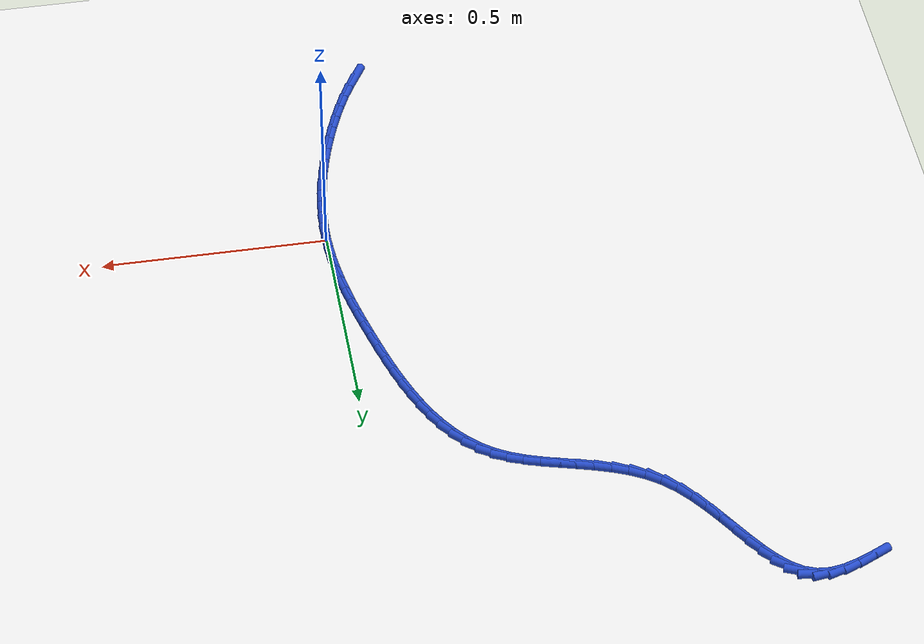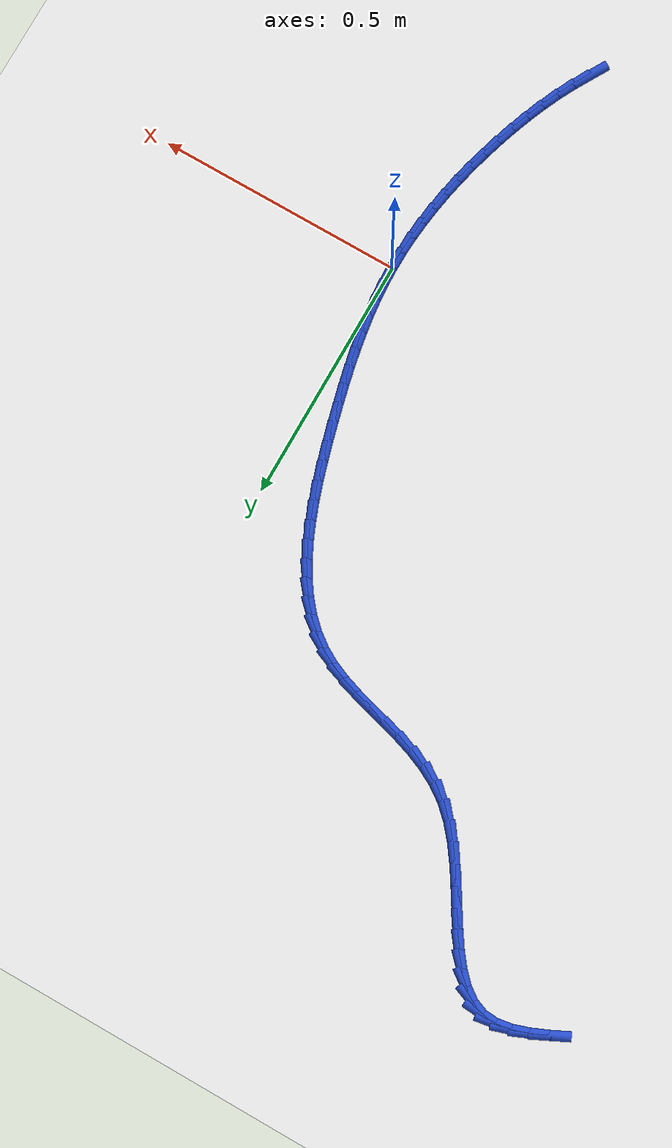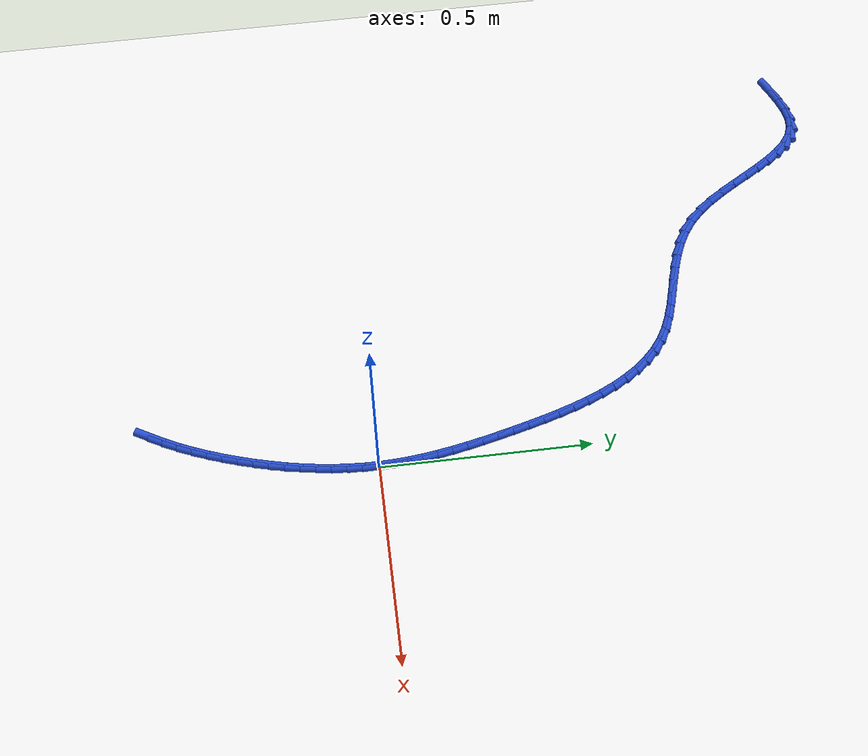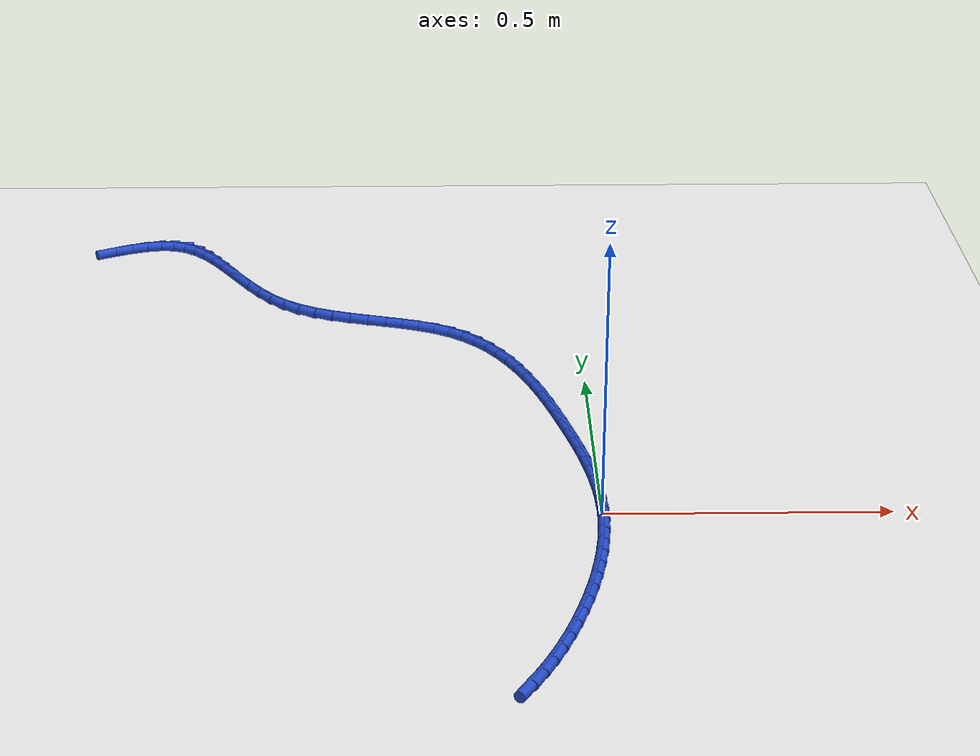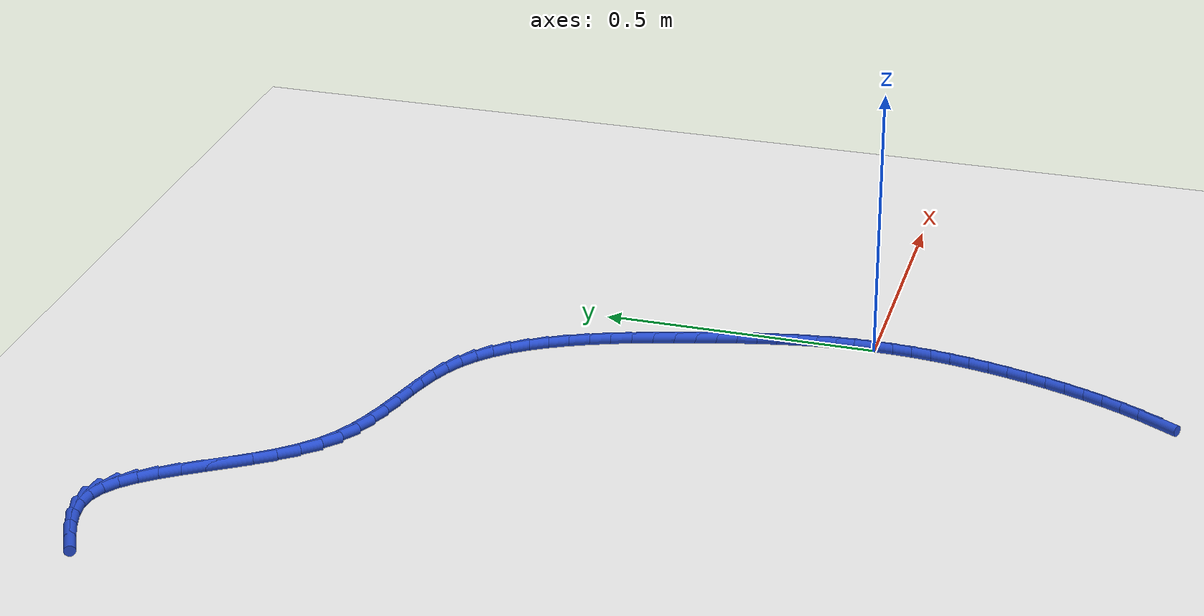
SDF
<sdf version="1.6">
 <world name="default">
  <model name="ground_plane">
   <static>1</static>
   <link name="link">
    <collision name="collision">
     <geometry><plane><normal>0 0 1</normal><size>100 100</size></plane></geometry>
     <surface><friction><ode><mu>100</mu><mu2>50</mu2></ode></friction></surface>
    </collision>
    <visual name="visual">
     <cast_shadows>0</cast_shadows>
     <geometry><plane><normal>0 0 1</normal><size>100 100</size></plane></geometry>
     <material>
      <script><uri>file://media/materials/scripts/gazebo.material</uri><name>Gazebo/WhiteGlow</name></script>
     </material>
    </visual>
   </link>
  </model>
  <model name="line">
   <link name="link_0">
    <pose>-1.214306433183765e-17 9.020562075079397e-17 0.01 0 1.57 -1.5380622606158996</pose>
    <collision name="collision">
     <geometry><cylinder><radius>0.01</radius><length>0.08</length></cylinder></geometry>
    </collision>
    <visual name="visual">
     <material>
      <script><name>Gazebo/Blue</name><uri>file://media/materials/scripts/gazebo.material</uri></script>
     </material>
     <geometry><cylinder><radius>0.01</radius><length>0.08</length></cylinder></geometry>
    </visual>
   </link>
   <link name="link_1">
    <pose>-0.0011506230612284894 0.03513807463007038 0.01 0 1.57 -1.496610817460994</pose>
    <collision name="collision">
     <geometry><cylinder><radius>0.01</radius><length>0.08</length></cylinder></geometry>
    </collision>
    <visual name="visual">
     <material>
      <script><name>Gazebo/Blue</name><uri>file://media/materials/scripts/gazebo.material</uri></script>
     </material>
     <geometry><cylinder><radius>0.01</radius><length>0.08</length></cylinder></geometry>
    </visual>
   </link>
   <link name="link_2">
    <pose>-0.0037538692371258536 0.07016470988369111 0.01 0 1.57 -1.4587520466387607</pose>
    <collision name="collision">
     <geometry><cylinder><radius>0.01</radius><length>0.08</length></cylinder></geometry>
    </collision>
    <visual name="visual">
     <material>
      <script><name>Gazebo/Blue</name><uri>file://media/materials/scripts/gazebo.material</uri></script>
     </material>
     <geometry><cylinder><radius>0.01</radius><length>0.08</length></cylinder></geometry>
    </visual>
   </link>
   <link name="link_3">
    <pose>-0.007691794820837743 0.10516366715586643 0.01 0 1.57 -1.4247978003058401</pose>
    <collision name="collision">
     <geometry><cylinder><radius>0.01</radius><length>0.08</length></cylinder></geometry>
    </collision>
    <visual name="visual">
     <material>
      <script><name>Gazebo/Blue</name><uri>file://media/materials/scripts/gazebo.material</uri></script>
     </material>
     <geometry><cylinder><radius>0.01</radius><length>0.08</length></cylinder></geometry>
    </visual>
   </link>
   <link name="link_4">
    <pose>-0.012846456105509796 0.14021870784160032 0.01 0 1.57 -1.394950768331338</pose>
    <collision name="collision">
     <geometry><cylinder><radius>0.01</radius><length>0.08</length></cylinder></geometry>
    </collision>
    <visual name="visual">
     <material>
      <script><name>Gazebo/Blue</name><uri>file://media/materials/scripts/gazebo.material</uri></script>
     </material>
     <geometry><cylinder><radius>0.01</radius><length>0.08</length></cylinder></geometry>
    </visual>
   </link>
   <link name="link_5">
    <pose>-0.019099909384287645 0.1754135933358968 0.01 0 1.57 -1.3693155655176366</pose>
    <collision name="collision">
     <geometry><cylinder><radius>0.01</radius><length>0.08</length></cylinder></geometry>
    </collision>
    <visual name="visual">
     <material>
      <script><name>Gazebo/Blue</name><uri>file://media/materials/scripts/gazebo.material</uri></script>
     </material>
     <geometry><cylinder><radius>0.01</radius><length>0.08</length></cylinder></geometry>
    </visual>
   </link>
   <link name="link_6">
    <pose>-0.026334210950316926 0.21083208503375994 0.01 0 1.57 -1.3479135404917968</pose>
    <collision name="collision">
     <geometry><cylinder><radius>0.01</radius><length>0.08</length></cylinder></geometry>
    </collision>
    <visual name="visual">
     <material>
      <script><name>Gazebo/Blue</name><uri>file://media/materials/scripts/gazebo.material</uri></script>
     </material>
     <geometry><cylinder><radius>0.01</radius><length>0.08</length></cylinder></geometry>
    </visual>
   </link>
   <link name="link_7">
    <pose>-0.034431417096743265 0.24655794433019376 0.01 0 1.57 -1.3306987130496626</pose>
    <collision name="collision">
     <geometry><cylinder><radius>0.01</radius><length>0.08</length></cylinder></geometry>
    </collision>
    <visual name="visual">
     <material>
      <script><name>Gazebo/Blue</name><uri>file://media/materials/scripts/gazebo.material</uri></script>
     </material>
     <geometry><cylinder><radius>0.01</radius><length>0.08</length></cylinder></geometry>
    </visual>
   </link>
   <link name="link_8">
    <pose>-0.043273584116712324 0.2826749326202023 0.01 0 1.57 -1.317572950040889</pose>
    <collision name="collision">
     <geometry><cylinder><radius>0.01</radius><length>0.08</length></cylinder></geometry>
    </collision>
    <visual name="visual">
     <material>
      <script><name>Gazebo/Blue</name><uri>file://media/materials/scripts/gazebo.material</uri></script>
     </material>
     <geometry><cylinder><radius>0.01</radius><length>0.08</length></cylinder></geometry>
    </visual>
   </link>
   <link name="link_9">
    <pose>-0.052742768303369714 0.3192668112987897 0.01 0 1.57 -1.3073159627286455</pose>
    <collision name="collision">
     <geometry><cylinder><radius>0.01</radius><length>0.08</length></cylinder></geometry>
    </collision>
    <visual name="visual">
     <material>
      <script><name>Gazebo/Blue</name><uri>file://media/materials/scripts/gazebo.material</uri></script>
     </material>
     <geometry><cylinder><radius>0.01</radius><length>0.08</length></cylinder></geometry>
    </visual>
   </link>
   <link name="link_10">
    <pose>-0.06275183961175235 0.35637157240728556 0.01 0 1.57 -1.293049773808524</pose>
    <collision name="collision">
     <geometry><cylinder><radius>0.01</radius><length>0.08</length></cylinder></geometry>
    </collision>
    <visual name="visual">
     <material>
      <script><name>Gazebo/Blue</name><uri>file://media/materials/scripts/gazebo.material</uri></script>
     </material>
     <geometry><cylinder><radius>0.01</radius><length>0.08</length></cylinder></geometry>
    </visual>
   </link>
   <link name="link_11">
    <pose>-0.07340643263303766 0.39374088327694295 0.01 0 1.57 -1.2720303084117195</pose>
    <collision name="collision">
     <geometry><cylinder><radius>0.01</radius><length>0.08</length></cylinder></geometry>
    </collision>
    <visual name="visual">
     <material>
      <script><name>Gazebo/Blue</name><uri>file://media/materials/scripts/gazebo.material</uri></script>
     </material>
     <geometry><cylinder><radius>0.01</radius><length>0.08</length></cylinder></geometry>
    </visual>
   </link>
   <link name="link_12">
    <pose>-0.08488657225573862 0.431015914932516 0.01 0 1.57 -1.2438736644466282</pose>
    <collision name="collision">
     <geometry><cylinder><radius>0.01</radius><length>0.08</length></cylinder></geometry>
    </collision>
    <visual name="visual">
     <material>
      <script><name>Gazebo/Blue</name><uri>file://media/materials/scripts/gazebo.material</uri></script>
     </material>
     <geometry><cylinder><radius>0.01</radius><length>0.08</length></cylinder></geometry>
    </visual>
   </link>
   <link name="link_13">
    <pose>-0.0973724419508331 0.46783760284684867 0.01 0 1.57 -1.207934310243819</pose>
    <collision name="collision">
     <geometry><cylinder><radius>0.01</radius><length>0.08</length></cylinder></geometry>
    </collision>
    <visual name="visual">
     <material>
      <script><name>Gazebo/Blue</name><uri>file://media/materials/scripts/gazebo.material</uri></script>
     </material>
     <geometry><cylinder><radius>0.01</radius><length>0.08</length></cylinder></geometry>
    </visual>
   </link>
   <link name="link_14">
    <pose>-0.11104422518929906 0.5038468824927846 0.01 0 1.57 -1.1633031702608532</pose>
    <collision name="collision">
     <geometry><cylinder><radius>0.01</radius><length>0.08</length></cylinder></geometry>
    </collision>
    <visual name="visual">
     <material>
      <script><name>Gazebo/Blue</name><uri>file://media/materials/scripts/gazebo.material</uri></script>
     </material>
     <geometry><cylinder><radius>0.01</radius><length>0.08</length></cylinder></geometry>
    </visual>
   </link>
   <link name="link_15">
    <pose>-0.12608210544211448 0.5386846893431677 0.01 0 1.57 -1.1088187910350338</pose>
    <collision name="collision">
     <geometry><cylinder><radius>0.01</radius><length>0.08</length></cylinder></geometry>
    </collision>
    <visual name="visual">
     <material>
      <script><name>Gazebo/Blue</name><uri>file://media/materials/scripts/gazebo.material</uri></script>
     </material>
     <geometry><cylinder><radius>0.01</radius><length>0.08</length></cylinder></geometry>
    </visual>
   </link>
   <link name="link_16">
    <pose>-0.1426662661802572 0.5719919588708416 0.01 0 1.57 -1.0431102051470291</pose>
    <collision name="collision">
     <geometry><cylinder><radius>0.01</radius><length>0.08</length></cylinder></geometry>
    </collision>
    <visual name="visual">
     <material>
      <script><name>Gazebo/Blue</name><uri>file://media/materials/scripts/gazebo.material</uri></script>
     </material>
     <geometry><cylinder><radius>0.01</radius><length>0.08</length></cylinder></geometry>
    </visual>
   </link>
   <link name="link_17">
    <pose>-0.1609768908747053 0.6034096265486504 0.01 0 1.57 -0.9647107659040579</pose>
    <collision name="collision">
     <geometry><cylinder><radius>0.01</radius><length>0.08</length></cylinder></geometry>
    </collision>
    <visual name="visual">
     <material>
      <script><name>Gazebo/Blue</name><uri>file://media/materials/scripts/gazebo.material</uri></script>
     </material>
     <geometry><cylinder><radius>0.01</radius><length>0.08</length></cylinder></geometry>
    </visual>
   </link>
   <link name="link_18">
    <pose>-0.18119416299643654 0.6325786278494375 0.01 0 1.57 -0.8722990770588438</pose>
    <collision name="collision">
     <geometry><cylinder><radius>0.01</radius><length>0.08</length></cylinder></geometry>
    </collision>
    <visual name="visual">
     <material>
      <script><name>Gazebo/Blue</name><uri>file://media/materials/scripts/gazebo.material</uri></script>
     </material>
     <geometry><cylinder><radius>0.01</radius><length>0.08</length></cylinder></geometry>
    </visual>
   </link>
   <link name="link_19">
    <pose>-0.20349826601642895 0.6591398982460469 0.01 0 1.57 -0.7651241760697677</pose>
    <collision name="collision">
     <geometry><cylinder><radius>0.01</radius><length>0.08</length></cylinder></geometry>
    </collision>
    <visual name="visual">
     <material>
      <script><name>Gazebo/Blue</name><uri>file://media/materials/scripts/gazebo.material</uri></script>
     </material>
     <geometry><cylinder><radius>0.01</radius><length>0.08</length></cylinder></geometry>
    </visual>
   </link>
   <link name="link_20">
    <pose>-0.2280693834056605 0.6827343732113224 0.01 0 1.57 -0.6436166609132487</pose>
    <collision name="collision">
     <geometry><cylinder><radius>0.01</radius><length>0.08</length></cylinder></geometry>
    </collision>
    <visual name="visual">
     <material>
      <script><name>Gazebo/Blue</name><uri>file://media/materials/scripts/gazebo.material</uri></script>
     </material>
     <geometry><cylinder><radius>0.01</radius><length>0.08</length></cylinder></geometry>
    </visual>
   </link>
   <link name="link_21">
    <pose>-0.25508769863510905 0.7030029882181077 0.01 0 1.57 -0.5128015331279259</pose>
    <collision name="collision">
     <geometry><cylinder><radius>0.01</radius><length>0.08</length></cylinder></geometry>
    </collision>
    <visual name="visual">
     <material>
      <script><name>Gazebo/Blue</name><uri>file://media/materials/scripts/gazebo.material</uri></script>
     </material>
     <geometry><cylinder><radius>0.01</radius><length>0.08</length></cylinder></geometry>
    </visual>
   </link>
   <link name="link_22">
    <pose>-0.28468648842035343 0.7196683672140995 0.01 0 1.57 -0.4019532033720319</pose>
    <collision name="collision">
     <geometry><cylinder><radius>0.01</radius><length>0.08</length></cylinder></geometry>
    </collision>
    <visual name="visual">
     <material>
      <script><name>Gazebo/Blue</name><uri>file://media/materials/scripts/gazebo.material</uri></script>
     </material>
     <geometry><cylinder><radius>0.01</radius><length>0.08</length></cylinder></geometry>
    </visual>
   </link>
   <link name="link_23">
    <pose>-0.31655999583431965 0.7332177146082128 0.01 0 1.57 -0.3254217992859664</pose>
    <collision name="collision">
     <geometry><cylinder><radius>0.01</radius><length>0.08</length></cylinder></geometry>
    </collision>
    <visual name="visual">
     <material>
      <script><name>Gazebo/Blue</name><uri>file://media/materials/scripts/gazebo.material</uri></script>
     </material>
     <geometry><cylinder><radius>0.01</radius><length>0.08</length></cylinder></geometry>
    </visual>
   </link>
   <link name="link_24">
    <pose>-0.3501626664106306 0.744555844066119 0.01 0 1.57 -0.2808949452889704</pose>
    <collision name="collision">
     <geometry><cylinder><radius>0.01</radius><length>0.08</length></cylinder></geometry>
    </collision>
    <visual name="visual">
     <material>
      <script><name>Gazebo/Blue</name><uri>file://media/materials/scripts/gazebo.material</uri></script>
     </material>
     <geometry><cylinder><radius>0.01</radius><length>0.08</length></cylinder></geometry>
    </visual>
   </link>
   <link name="link_25">
    <pose>-0.3849465148790331 0.754591802517114 0.01 0 1.57 -0.2658220890735063</pose>
    <collision name="collision">
     <geometry><cylinder><radius>0.01</radius><length>0.08</length></cylinder></geometry>
    </collision>
    <visual name="visual">
     <material>
      <script><name>Gazebo/Blue</name><uri>file://media/materials/scripts/gazebo.material</uri></script>
     </material>
     <geometry><cylinder><radius>0.01</radius><length>0.08</length></cylinder></geometry>
    </visual>
   </link>
   <link name="link_26">
    <pose>-0.4203635559692735 0.7642346368904932 0.01 0 1.57 -0.2786969449983281</pose>
    <collision name="collision">
     <geometry><cylinder><radius>0.01</radius><length>0.08</length></cylinder></geometry>
    </collision>
    <visual name="visual">
     <material>
      <script><name>Gazebo/Blue</name><uri>file://media/materials/scripts/gazebo.material</uri></script>
     </material>
     <geometry><cylinder><radius>0.01</radius><length>0.08</length></cylinder></geometry>
    </visual>
   </link>
   <link name="link_27">
    <pose>-0.45586580441109825 0.7743933941155521 0.01 0 1.57 -0.31928025760383244</pose>
    <collision name="collision">
     <geometry><cylinder><radius>0.01</radius><length>0.08</length></cylinder></geometry>
    </collision>
    <visual name="visual">
     <material>
      <script><name>Gazebo/Blue</name><uri>file://media/materials/scripts/gazebo.material</uri></script>
     </material>
     <geometry><cylinder><radius>0.01</radius><length>0.08</length></cylinder></geometry>
    </visual>
   </link>
   <link name="link_28">
    <pose>-0.4909052749342538 0.7859771211215861 0.01 0 1.57 -0.3882409004246865</pose>
    <collision name="collision">
     <geometry><cylinder><radius>0.01</radius><length>0.08</length></cylinder></geometry>
    </collision>
    <visual name="visual">
     <material>
      <script><name>Gazebo/Blue</name><uri>file://media/materials/scripts/gazebo.material</uri></script>
     </material>
     <geometry><cylinder><radius>0.01</radius><length>0.08</length></cylinder></geometry>
    </visual>
   </link>
   <link name="link_29">
    <pose>-0.524933982268487 0.7998948648378911 0.01 0 1.57 -0.4861972512409532</pose>
    <collision name="collision">
     <geometry><cylinder><radius>0.01</radius><length>0.08</length></cylinder></geometry>
    </collision>
    <visual name="visual">
     <material>
      <script><name>Gazebo/Blue</name><uri>file://media/materials/scripts/gazebo.material</uri></script>
     </material>
     <geometry><cylinder><radius>0.01</radius><length>0.08</length></cylinder></geometry>
    </visual>
   </link>
   <link name="link_30">
    <pose>-0.5574039411435436 0.8170556721937619 0.01 0 1.57 -0.6120214006155447</pose>
    <collision name="collision">
     <geometry><cylinder><radius>0.01</radius><length>0.08</length></cylinder></geometry>
    </collision>
    <visual name="visual">
     <material>
      <script><name>Gazebo/Blue</name><uri>file://media/materials/scripts/gazebo.material</uri></script>
     </material>
     <geometry><cylinder><radius>0.01</radius><length>0.08</length></cylinder></geometry>
    </visual>
   </link>
   <link name="link_31">
    <pose>-0.5877671662891709 0.8383685901184947 0.01 0 1.57 -0.753441485325637</pose>
    <collision name="collision">
     <geometry><cylinder><radius>0.01</radius><length>0.08</length></cylinder></geometry>
    </collision>
    <visual name="visual">
     <material>
      <script><name>Gazebo/Blue</name><uri>file://media/materials/scripts/gazebo.material</uri></script>
     </material>
     <geometry><cylinder><radius>0.01</radius><length>0.08</length></cylinder></geometry>
    </visual>
   </link>
   <link name="link_32">
    <pose>-0.6156007514404964 0.8644777570581857 0.01 0 1.57 -0.8675343127788963</pose>
    <collision name="collision">
     <geometry><cylinder><radius>0.01</radius><length>0.08</length></cylinder></geometry>
    </collision>
    <visual name="visual">
     <material>
      <script><name>Gazebo/Blue</name><uri>file://media/materials/scripts/gazebo.material</uri></script>
     </material>
     <geometry><cylinder><radius>0.01</radius><length>0.08</length></cylinder></geometry>
    </visual>
   </link>
   <link name="link_33">
    <pose>-0.6411503757834095 0.8946112947812314 0.01 0 1.57 -0.9460708070805375</pose>
    <collision name="collision">
     <geometry><cylinder><radius>0.01</radius><length>0.08</length></cylinder></geometry>
    </collision>
    <visual name="visual">
     <material>
      <script><name>Gazebo/Blue</name><uri>file://media/materials/scripts/gazebo.material</uri></script>
     </material>
     <geometry><cylinder><radius>0.01</radius><length>0.08</length></cylinder></geometry>
    </visual>
   </link>
   <link name="link_34">
    <pose>-0.6648841917305175 0.9275261425033503 0.01 0 1.57 -0.994584265589209</pose>
    <collision name="collision">
     <geometry><cylinder><radius>0.01</radius><length>0.08</length></cylinder></geometry>
    </collision>
    <visual name="visual">
     <material>
      <script><name>Gazebo/Blue</name><uri>file://media/materials/scripts/gazebo.material</uri></script>
     </material>
     <geometry><cylinder><radius>0.01</radius><length>0.08</length></cylinder></geometry>
    </visual>
   </link>
   <link name="link_35">
    <pose>-0.6872705021589269 0.9619789207670965 0.01 0 1.57 -1.016554241169779</pose>
    <collision name="collision">
     <geometry><cylinder><radius>0.01</radius><length>0.08</length></cylinder></geometry>
    </collision>
    <visual name="visual">
     <material>
      <script><name>Gazebo/Blue</name><uri>file://media/materials/scripts/gazebo.material</uri></script>
     </material>
     <geometry><cylinder><radius>0.01</radius><length>0.08</length></cylinder></geometry>
    </visual>
   </link>
   <link name="link_36">
    <pose>-0.7087776099457439 0.9967262501150247 0.01 0 1.57 -1.0127898792860328</pose>
    <collision name="collision">
     <geometry><cylinder><radius>0.01</radius><length>0.08</length></cylinder></geometry>
    </collision>
    <visual name="visual">
     <material>
      <script><name>Gazebo/Blue</name><uri>file://media/materials/scripts/gazebo.material</uri></script>
     </material>
     <geometry><cylinder><radius>0.01</radius><length>0.08</length></cylinder></geometry>
    </visual>
   </link>
   <link name="link_37">
    <pose>-0.729873817968075 1.030524751089689 0.01 0 1.57 -0.980983368816893</pose>
    <collision name="collision">
     <geometry><cylinder><radius>0.01</radius><length>0.08</length></cylinder></geometry>
    </collision>
    <visual name="visual">
     <material>
      <script><name>Gazebo/Blue</name><uri>file://media/materials/scripts/gazebo.material</uri></script>
     </material>
     <geometry><cylinder><radius>0.01</radius><length>0.08</length></cylinder></geometry>
    </visual>
   </link>
   <link name="link_38">
    <pose>-0.7510274291030271 1.062131044233645 0.01 0 1.57 -0.9148879022112547</pose>
    <collision name="collision">
     <geometry><cylinder><radius>0.01</radius><length>0.08</length></cylinder></geometry>
    </collision>
    <visual name="visual">
     <material>
      <script><name>Gazebo/Blue</name><uri>file://media/materials/scripts/gazebo.material</uri></script>
     </material>
     <geometry><cylinder><radius>0.01</radius><length>0.08</length></cylinder></geometry>
    </visual>
   </link>
   <link name="link_39">
    <pose>-0.7727067462277065 1.090301750089446 0.01 0 1.57 -0.8031242815300945</pose>
    <collision name="collision">
     <geometry><cylinder><radius>0.01</radius><length>0.08</length></cylinder></geometry>
    </collision>
    <visual name="visual">
     <material>
      <script><name>Gazebo/Blue</name><uri>file://media/materials/scripts/gazebo.material</uri></script>
     </material>
     <geometry><cylinder><radius>0.01</radius><length>0.08</length></cylinder></geometry>
    </visual>
   </link>
   <link name="link_40">
    <pose>-0.7953800722192195 1.113793489199647 0.01 0 1.57 -0.6292352011571766</pose>
    <collision name="collision">
     <geometry><cylinder><radius>0.01</radius><length>0.08</length></cylinder></geometry>
    </collision>
    <visual name="visual">
     <material>
      <script><name>Gazebo/Blue</name><uri>file://media/materials/scripts/gazebo.material</uri></script>
     </material>
     <geometry><cylinder><radius>0.01</radius><length>0.08</length></cylinder></geometry>
    </visual>
   </link>
   <link name="link_41">
    <pose>-0.8195157099546727 1.1313628821068027 0.01 0 1.57 -0.37975098794788187</pose>
    <collision name="collision">
     <geometry><cylinder><radius>0.01</radius><length>0.08</length></cylinder></geometry>
    </collision>
    <visual name="visual">
     <material>
      <script><name>Gazebo/Blue</name><uri>file://media/materials/scripts/gazebo.material</uri></script>
     </material>
     <geometry><cylinder><radius>0.01</radius><length>0.08</length></cylinder></geometry>
    </visual>
   </link>
   <link name="link_42">
    <pose>-0.8455819623111727 1.1417665493534672 0.01 0 1.57 -0.08009483085022656</pose>
    <collision name="collision">
     <geometry><cylinder><radius>0.01</radius><length>0.08</length></cylinder></geometry>
    </collision>
    <visual name="visual">
     <material>
      <script><name>Gazebo/Blue</name><uri>file://media/materials/scripts/gazebo.material</uri></script>
     </material>
     <geometry><cylinder><radius>0.01</radius><length>0.08</length></cylinder></geometry>
    </visual>
   </link>
   <link name="link_43">
    <pose>-0.873968294174791 1.1440450221601086 0.01 0 1.57 0.1611885504679022</pose>
    <collision name="collision">
     <geometry><cylinder><radius>0.01</radius><length>0.08</length></cylinder></geometry>
    </collision>
    <visual name="visual">
     <material>
      <script><name>Gazebo/Blue</name><uri>file://media/materials/scripts/gazebo.material</uri></script>
     </material>
     <geometry><cylinder><radius>0.01</radius><length>0.08</length></cylinder></geometry>
    </visual>
   </link>
   <link name="link_44">
    <pose>-0.9045552336822972 1.139071610279652 0.01 0 1.57 0.31625287087366766</pose>
    <collision name="collision">
     <geometry><cylinder><radius>0.01</radius><length>0.08</length></cylinder></geometry>
    </collision>
    <visual name="visual">
     <material>
      <script><name>Gazebo/Blue</name><uri>file://media/materials/scripts/gazebo.material</uri></script>
     </material>
     <geometry><cylinder><radius>0.01</radius><length>0.08</length></cylinder></geometry>
    </visual>
   </link>
   <link name="link_45">
    <pose>-0.9370211621901585 1.1284475926671778 0.01 0 1.57 0.40713198622387126</pose>
    <collision name="collision">
     <geometry><cylinder><radius>0.01</radius><length>0.08</length></cylinder></geometry>
    </collision>
    <visual name="visual">
     <material>
      <script><name>Gazebo/Blue</name><uri>file://media/materials/scripts/gazebo.material</uri></script>
     </material>
     <geometry><cylinder><radius>0.01</radius><length>0.08</length></cylinder></geometry>
    </visual>
   </link>
   <link name="link_46">
    <pose>-0.971043948323818 1.1137760947202167 0.01 0 1.57 0.4519421486328973</pose>
    <collision name="collision">
     <geometry><cylinder><radius>0.01</radius><length>0.08</length></cylinder></geometry>
    </collision>
    <visual name="visual">
     <material>
      <script><name>Gazebo/Blue</name><uri>file://media/materials/scripts/gazebo.material</uri></script>
     </material>
     <geometry><cylinder><radius>0.01</radius><length>0.08</length></cylinder></geometry>
    </visual>
   </link>
   <link name="link_175">
    <pose>-0.14063015982215962 -0.5207613032742546 0.01 0 1.57 1.0518126869313849</pose>
    <collision name="collision">
     <geometry><cylinder><radius>0.01</radius><length>0.08</length></cylinder></geometry>
    </collision>
    <visual name="visual">
     <material>
      <script><name>Gazebo/Blue</name><uri>file://media/materials/scripts/gazebo.material</uri></script>
     </material>
     <geometry><cylinder><radius>0.01</radius><length>0.08</length></cylinder></geometry>
    </visual>
   </link>
   <link name="link_176">
    <pose>-0.12268847234831616 -0.4893515043768532 0.01 0 1.57 1.100515636929254</pose>
    <collision name="collision">
     <geometry><cylinder><radius>0.01</radius><length>0.08</length></cylinder></geometry>
    </collision>
    <visual name="visual">
     <material>
      <script><name>Gazebo/Blue</name><uri>file://media/materials/scripts/gazebo.material</uri></script>
     </material>
     <geometry><cylinder><radius>0.01</radius><length>0.08</length></cylinder></geometry>
    </visual>
   </link>
   <link name="link_177">
    <pose>-0.10616546345036446 -0.45684631210456605 0.01 0 1.57 1.144138406320546</pose>
    <collision name="collision">
     <geometry><cylinder><radius>0.01</radius><length>0.08</length></cylinder></geometry>
    </collision>
    <visual name="visual">
     <material>
      <script><name>Gazebo/Blue</name><uri>file://media/materials/scripts/gazebo.material</uri></script>
     </material>
     <geometry><cylinder><radius>0.01</radius><length>0.08</length></cylinder></geometry>
    </visual>
   </link>
   <link name="link_178">
    <pose>-0.09097419236610975 -0.4234282149622085 0.01 0 1.57 1.1830640607841</pose>
    <collision name="collision">
     <geometry><cylinder><radius>0.01</radius><length>0.08</length></cylinder></geometry>
    </collision>
    <visual name="visual">
     <material>
      <script><name>Gazebo/Blue</name><uri>file://media/materials/scripts/gazebo.material</uri></script>
     </material>
     <geometry><cylinder><radius>0.01</radius><length>0.08</length></cylinder></geometry>
    </visual>
   </link>
   <link name="link_179">
    <pose>-0.07702771833335775 -0.38927970145459684 0.01 0 1.57 1.217660834253385</pose>
    <collision name="collision">
     <geometry><cylinder><radius>0.01</radius><length>0.08</length></cylinder></geometry>
    </collision>
    <visual name="visual">
     <material>
      <script><name>Gazebo/Blue</name><uri>file://media/materials/scripts/gazebo.material</uri></script>
     </material>
     <geometry><cylinder><radius>0.01</radius><length>0.08</length></cylinder></geometry>
    </visual>
   </link>
   <link name="link_180">
    <pose>-0.06423910058991315 -0.3545832600865447 0.01 0 1.57 1.2482680920035434</pose>
    <collision name="collision">
     <geometry><cylinder><radius>0.01</radius><length>0.08</length></cylinder></geometry>
    </collision>
    <visual name="visual">
     <material>
      <script><name>Gazebo/Blue</name><uri>file://media/materials/scripts/gazebo.material</uri></script>
     </material>
     <geometry><cylinder><radius>0.01</radius><length>0.08</length></cylinder></geometry>
    </visual>
   </link>
   <link name="link_181">
    <pose>-0.05252147798695911 -0.3195213058446239 0.01 0 1.57 1.276422281369771</pose>
    <collision name="collision">
     <geometry><cylinder><radius>0.01</radius><length>0.08</length></cylinder></geometry>
    </collision>
    <visual name="visual">
     <material>
      <script><name>Gazebo/Blue</name><uri>file://media/materials/scripts/gazebo.material</uri></script>
     </material>
     <geometry><cylinder><radius>0.01</radius><length>0.08</length></cylinder></geometry>
    </visual>
   </link>
   <link name="link_182">
    <pose>-0.04182533564107218 -0.2842417666485731 0.01 0 1.57 1.3055336336854568</pose>
    <collision name="collision">
     <geometry><cylinder><radius>0.01</radius><length>0.08</length></cylinder></geometry>
    </collision>
    <visual name="visual">
     <material>
      <script><name>Gazebo/Blue</name><uri>file://media/materials/scripts/gazebo.material</uri></script>
     </material>
     <geometry><cylinder><radius>0.01</radius><length>0.08</length></cylinder></geometry>
    </visual>
   </link>
   <link name="link_183">
    <pose>-0.032197932569696185 -0.24880320544544662 0.01 0 1.57 1.3362318099596926</pose>
    <collision name="collision">
     <geometry><cylinder><radius>0.01</radius><length>0.08</length></cylinder></geometry>
    </collision>
    <visual name="visual">
     <material>
      <script><name>Gazebo/Blue</name><uri>file://media/materials/scripts/gazebo.material</uri></script>
     </material>
     <geometry><cylinder><radius>0.01</radius><length>0.08</length></cylinder></geometry>
    </visual>
   </link>
   <link name="link_184">
    <pose>-0.023701997216207676 -0.2132499000825607 0.01 0 1.57 1.3686282789967994</pose>
    <collision name="collision">
     <geometry><cylinder><radius>0.01</radius><length>0.08</length></cylinder></geometry>
    </collision>
    <visual name="visual">
     <material>
      <script><name>Gazebo/Blue</name><uri>file://media/materials/scripts/gazebo.material</uri></script>
     </material>
     <geometry><cylinder><radius>0.01</radius><length>0.08</length></cylinder></geometry>
    </visual>
   </link>
   <link name="link_185">
    <pose>-0.016400258023983188 -0.1776261284072313 0.01 0 1.57 1.4028336415778608</pose>
    <collision name="collision">
     <geometry><cylinder><radius>0.01</radius><length>0.08</length></cylinder></geometry>
    </collision>
    <visual name="visual">
     <material>
      <script><name>Gazebo/Blue</name><uri>file://media/materials/scripts/gazebo.material</uri></script>
     </material>
     <geometry><cylinder><radius>0.01</radius><length>0.08</length></cylinder></geometry>
    </visual>
   </link>
   <link name="link_186">
    <pose>-0.01035544343639938 -0.14197616826677545 0.01 0 1.57 1.4389550320388929</pose>
    <collision name="collision">
     <geometry><cylinder><radius>0.01</radius><length>0.08</length></cylinder></geometry>
    </collision>
    <visual name="visual">
     <material>
      <script><name>Gazebo/Blue</name><uri>file://media/materials/scripts/gazebo.material</uri></script>
     </material>
     <geometry><cylinder><radius>0.01</radius><length>0.08</length></cylinder></geometry>
    </visual>
   </link>
   <link name="link_187">
    <pose>-0.005630281896832531 -0.10634429750850777 0.01 0 1.57 1.4770927218658958</pose>
    <collision name="collision">
     <geometry><cylinder><radius>0.01</radius><length>0.08</length></cylinder></geometry>
    </collision>
    <visual name="visual">
     <material>
      <script><name>Gazebo/Blue</name><uri>file://media/materials/scripts/gazebo.material</uri></script>
     </material>
     <geometry><cylinder><radius>0.01</radius><length>0.08</length></cylinder></geometry>
    </visual>
   </link>
   <link name="link_188">
    <pose>-0.002287501848659324 -0.0707747939797452 0.01 0 1.57 1.5173358335028018</pose>
    <collision name="collision">
     <geometry><cylinder><radius>0.01</radius><length>0.08</length></cylinder></geometry>
    </collision>
    <visual name="visual">
     <material>
      <script><name>Gazebo/Blue</name><uri>file://media/materials/scripts/gazebo.material</uri></script>
     </material>
     <geometry><cylinder><radius>0.01</radius><length>0.08</length></cylinder></geometry>
    </visual>
   </link>
   <link name="link_189">
    <pose>-0.00038983173525630396 -0.0353119355278039 0.01 0 1.57 1.5597571160069992</pose>
    <collision name="collision">
     <geometry><cylinder><radius>0.01</radius><length>0.08</length></cylinder></geometry>
    </collision>
    <visual name="visual">
     <material>
      <script><name>Gazebo/Blue</name><uri>file://media/materials/scripts/gazebo.material</uri></script>
     </material>
     <geometry><cylinder><radius>0.01</radius><length>0.08</length></cylinder></geometry>
    </visual>
   </link>
   <link name="link_190">
    <pose>-3.469446951953614e-18 6.938893903907228e-18 0.01 0 1.57 -1.537185843091909</pose>
    <collision name="collision">
     <geometry><cylinder><radius>0.01</radius><length>0.08</length></cylinder></geometry>
    </collision>
    <visual name="visual">
     <material>
      <script><name>Gazebo/Blue</name><uri>file://media/materials/scripts/gazebo.material</uri></script>
     </material>
     <geometry><cylinder><radius>0.01</radius><length>0.08</length></cylinder></geometry>
    </visual>
   </link>
   <link name="link_191">
    <pose>-0.001180735086266968 0.03511673475635037 0.01 0 1.57 -1.5371858430919092</pose>
    <collision name="collision">
     <geometry><cylinder><radius>0.01</radius><length>0.08</length></cylinder></geometry>
    </collision>
    <visual name="visual">
     <material>
      <script><name>Gazebo/Blue</name><uri>file://media/materials/scripts/gazebo.material</uri></script>
     </material>
     <geometry><cylinder><radius>0.01</radius><length>0.08</length></cylinder></geometry>
    </visual>
   </link>
  </model>
 </world>
</sdf>
